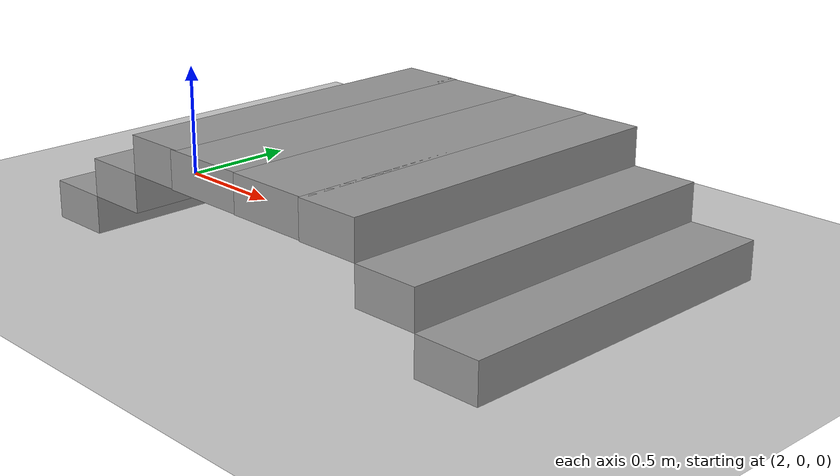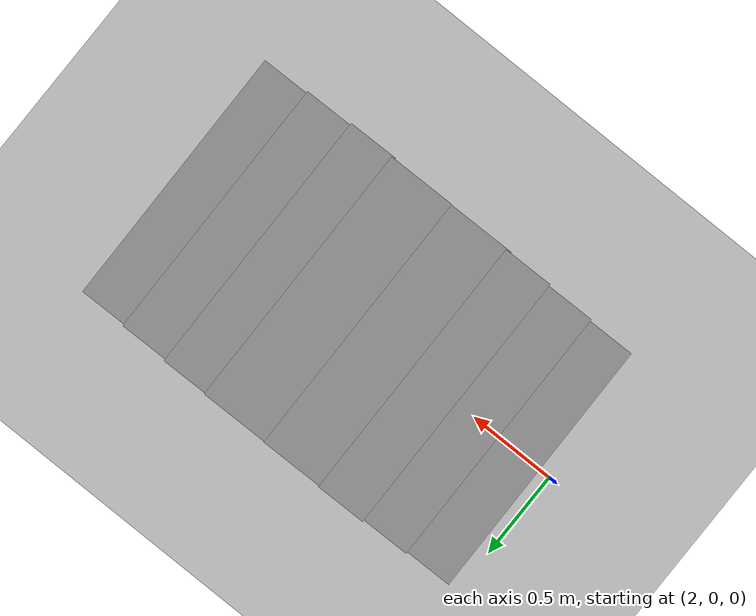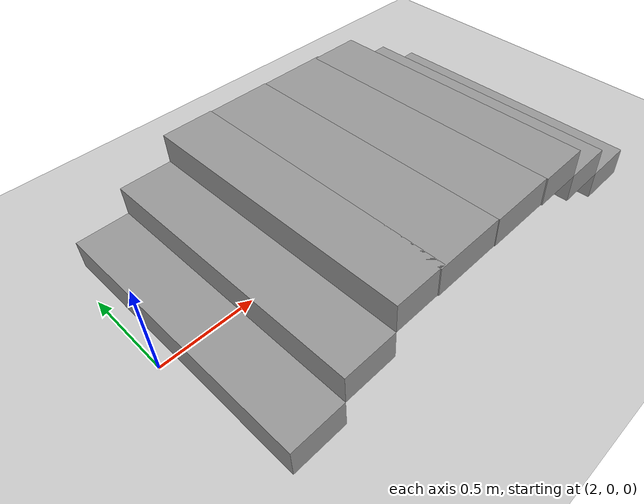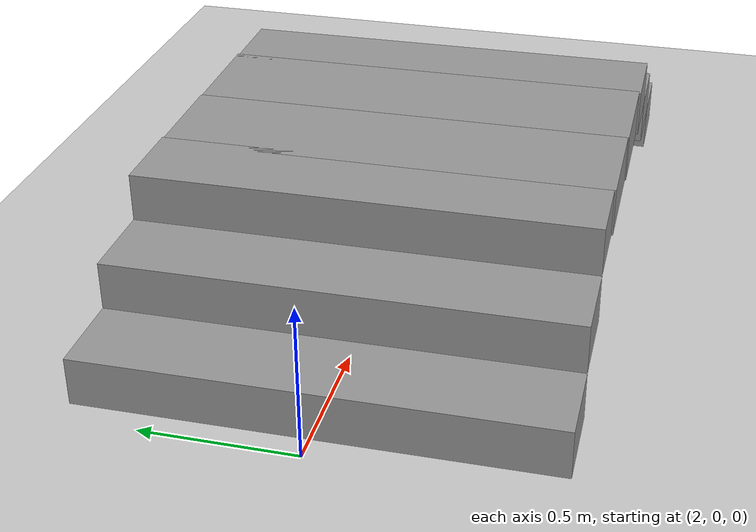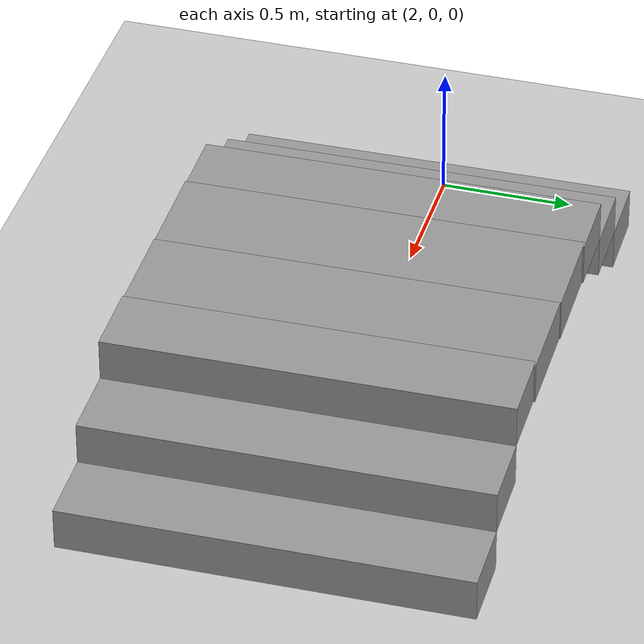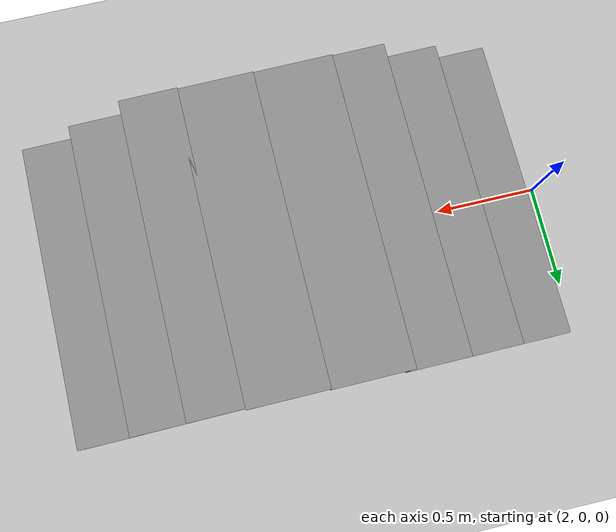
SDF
<sdf version="1.4">
<world name="default">
<physics type="ode">
<gravity>0 0 -9.81</gravity>
<!--
 max step size has to be a multiple of the desired task rate
-->
<max_step_size>0.001</max_step_size>
<real_time_factor>1</real_time_factor>
</physics>
<!-- A global light source -->
<include>
<uri>model://sun</uri>
</include>
<!-- A ground plane -->
<include>
<uri>model://ground_plane</uri>
</include>

<include>
<name>stair_1</name>
<uri>model://stairs_built</uri>
<pose>2.50 0.0 0.00 0 0 1.58</pose>
</include>

<include>
<name>pallet_1</name>
<uri>model://pallet_built_38x1500x16</uri>
<pose>3.08 0.0 0.32 0 0 1.58</pose>
</include>

<include>
<name>pallet_2</name>
<uri>model://pallet_built_38x1500x16</uri>
<pose>3.46 0.0 0.32 0 0 1.58</pose>
</include>

<include>
<name>stair_2</name>
<uri>model://stairs_built</uri>
<pose>4.05 0.0 0.00 0 0 -1.56</pose>
</include>
</world>
</sdf>

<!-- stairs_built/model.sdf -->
<sdf version='1.6'>
  <model name='stairs_built'>
    <pose frame=''>2.5 -0.01 0 0 -0 0</pose>
    <link name='Stairs_1'>
      <visual name='Stairs_1_Visual_0'>
        <pose frame=''>0 0.28 0.08 0 -0 0</pose>
        <geometry>
          <box>
            <size>1.5 0.28 0.16</size>
          </box>
        </geometry>
        <material>
          <script>
            <uri>file://media/materials/scripts/gazebo.material</uri>
            <name>Gazebo/Grey</name>
          </script>
          <ambient>1 1 1 1</ambient>
        </material>
      </visual>
      <collision name='Stairs_1_Collision_0'>
        <geometry>
          <box>
            <size>1.5 0.28 0.16</size>
          </box>
        </geometry>
        <pose frame=''>0 0.28 0.08 0 -0 0</pose>
      </collision>
      <visual name='Stairs_1_Visual_1'>
        <pose frame=''>0 -0 0.24 0 -0 0</pose>
        <geometry>
          <box>
            <size>1.5 0.28 0.16</size>
          </box>
        </geometry>
        <material>
          <script>
            <uri>file://media/materials/scripts/gazebo.material</uri>
            <name>Gazebo/Grey</name>
          </script>
          <ambient>1 1 1 1</ambient>
        </material>
      </visual>
      <collision name='Stairs_1_Collision_1'>
        <geometry>
          <box>
            <size>1.5 0.28 0.16</size>
          </box>
        </geometry>
        <pose frame=''>0 -0 0.24 0 -0 0</pose>
      </collision>
      <visual name='Stairs_1_Visual_2'>
        <pose frame=''>0 -0.28 0.4 0 -0 0</pose>
        <geometry>
          <box>
            <size>1.5 0.28 0.16</size>
          </box>
        </geometry>
        <material>
          <script>
            <uri>file://media/materials/scripts/gazebo.material</uri>
            <name>Gazebo/Grey</name>
          </script>
          <ambient>1 1 1 1</ambient>
        </material>
      </visual>
      <collision name='Stairs_1_Collision_2'>
        <geometry>
          <box>
            <size>1.5 0.28 0.16</size>
          </box>
        </geometry>
        <pose frame=''>0 -0.28 0.4 0 -0 0</pose>
      </collision>
    </link>
    <static>1</static>
  </model>
</sdf>

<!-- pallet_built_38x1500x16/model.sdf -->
<sdf version='1.6'>
  <model name='pallet_built'>
    <pose frame=''>-0.15 -2.95 0 0 -0 0</pose>
    <link name='Stairs_1'>
      <visual name='Stairs_1_Visual_0'>
        <pose frame=''>-0 0 0.08 0 -0 0</pose>
        <geometry>
          <box>
            <size>1.5 0.38 0.16</size>
          </box>
        </geometry>
        <material>
          <script>
            <uri>file://media/materials/scripts/gazebo.material</uri>
            <name>Gazebo/Grey</name>
          </script>
          <ambient>1 1 1 1</ambient>
        </material>
      </visual>
      <collision name='Stairs_1_Collision_0'>
        <geometry>
          <box>
            <size>1.5 0.38 0.16</size>
          </box>
        </geometry>
        <pose frame=''>-0 0 0.08 0 -0 0</pose>
      </collision>
    </link>
    <static>1</static>
  </model>
</sdf>
